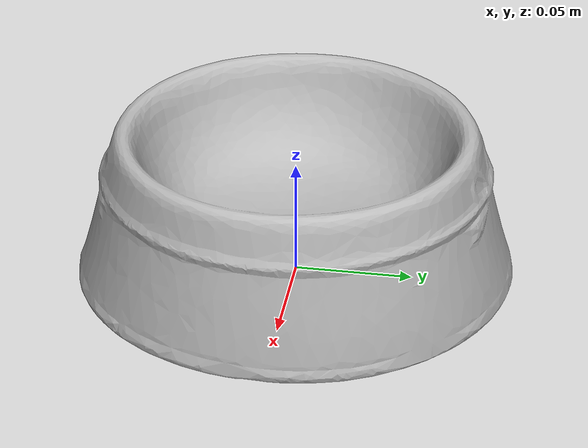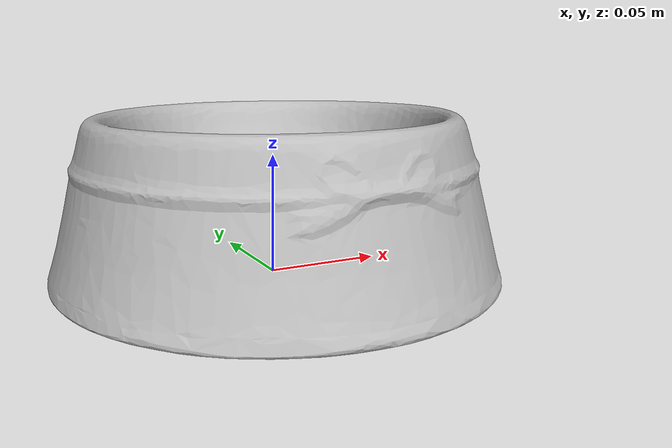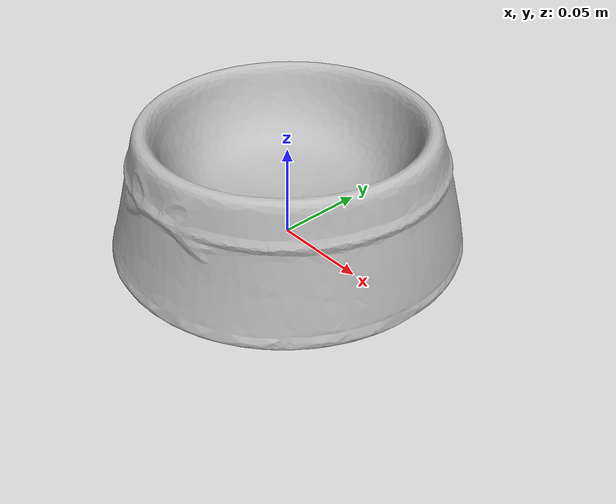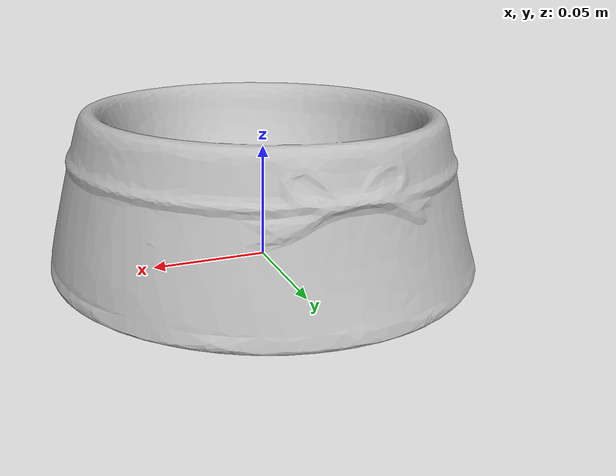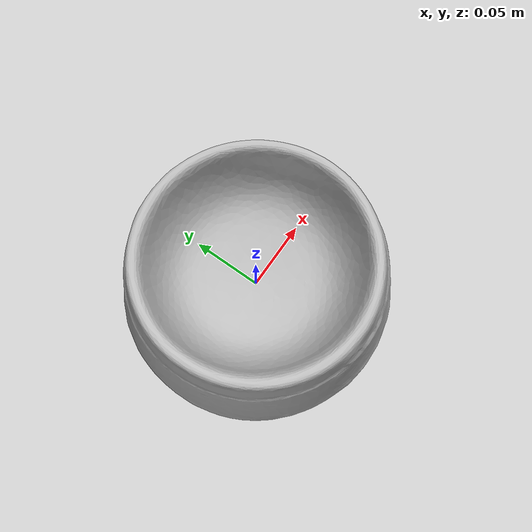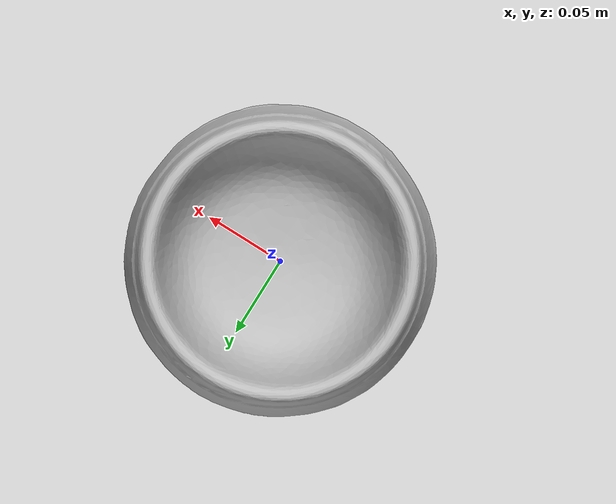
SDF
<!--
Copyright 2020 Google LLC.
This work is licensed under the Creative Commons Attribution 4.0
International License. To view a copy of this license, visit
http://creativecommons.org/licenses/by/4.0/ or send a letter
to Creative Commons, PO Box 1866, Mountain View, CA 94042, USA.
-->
<?xml version="1.0" ?>
<sdf version="1.6">
  <model name="Top_Paw_Dog_Bow_Bone_Ceramic_13_fl_oz_total">
    <link name="link_0">
      <visual name="visual">
        <geometry>
          <mesh>
            <uri>meshes/model.obj</uri>
          </mesh>
        </geometry>
      </visual>
      <collision name="collision_0">
        <geometry>
          <mesh>
            <uri>meshes/model.obj</uri>
          </mesh>
        </geometry>
      </collision>
    </link>
  </model>
</sdf>
